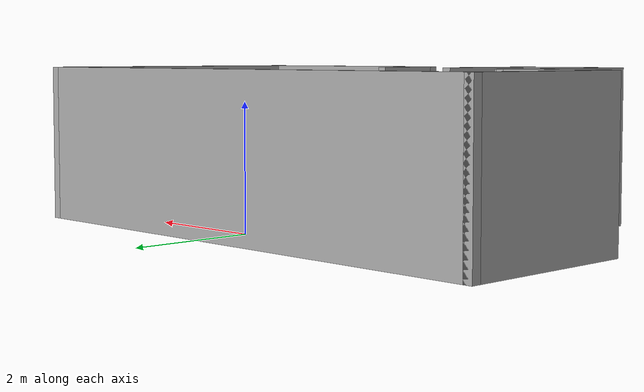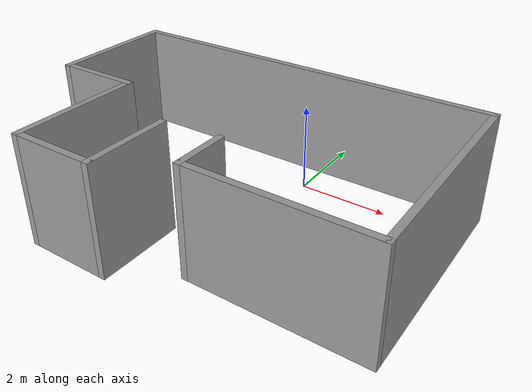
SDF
<?xml version='1.0'?>
<sdf version='1.6'>
  <model name='La_maisonette'>
    <pose frame=''>-0.705 -1.99 0 0 -0 0</pose>
    <link name='Wall_11'>
      <collision name='Wall_11_Collision'>
        <geometry>
          <box>
            <size>9 0.15 2.5</size>
          </box>
        </geometry>
        <pose frame=''>0 0 1.25 0 -0 0</pose>
      </collision>
      <visual name='Wall_11_Visual'>
        <pose frame=''>0 0 1.25 0 -0 0</pose>
        <geometry>
          <box>
            <size>9 0.15 2.5</size>
          </box>
        </geometry>
        <material>
          <script>
            <uri>file://media/materials/scripts/gazebo.material</uri>
            <name>Gazebo/Grey</name>
          </script>
          <ambient>1 1 1 1</ambient>
        </material>
        <meta>
          <layer>0</layer>
        </meta>
      </visual>
      <pose frame=''>0 2.85 0 0 -0 0</pose>
    </link>
    <link name='Wall_12'>
      <collision name='Wall_12_Collision'>
        <geometry>
          <box>
            <size>5 0.15 2.5</size>
          </box>
        </geometry>
        <pose frame=''>0 0 1.25 0 -0 0</pose>
      </collision>
      <visual name='Wall_12_Visual'>
        <pose frame=''>0 0 1.25 0 -0 0</pose>
        <geometry>
          <box>
            <size>5 0.15 2.5</size>
          </box>
        </geometry>
        <material>
          <script>
            <uri>file://media/materials/scripts/gazebo.material</uri>
            <name>Gazebo/Grey</name>
          </script>
          <ambient>1 1 1 1</ambient>
        </material>
        <meta>
          <layer>0</layer>
        </meta>
      </visual>
      <pose frame=''>4.425 0.425 0 0 -0 -1.5708</pose>
    </link>
    <link name='Wall_13'>
      <collision name='Wall_13_Collision'>
        <geometry>
          <box>
            <size>4 0.15 2.5</size>
          </box>
        </geometry>
        <pose frame=''>0 0 1.25 0 -0 0</pose>
      </collision>
      <visual name='Wall_13_Visual'>
        <pose frame=''>0 0 1.25 0 -0 0</pose>
        <geometry>
          <box>
            <size>4 0.15 2.5</size>
          </box>
        </geometry>
        <material>
          <script>
            <uri>file://media/materials/scripts/gazebo.material</uri>
            <name>Gazebo/Grey</name>
          </script>
          <ambient>1 1 1 1</ambient>
        </material>
        <meta>
          <layer>0</layer>
        </meta>
      </visual>
      <pose frame=''>2.5 -2 0 0 -0 3.14159</pose>
    </link>
    <link name='Wall_15'>
      <collision name='Wall_15_Collision'>
        <geometry>
          <box>
            <size>3 0.15 2.5</size>
          </box>
        </geometry>
        <pose frame=''>0 0 1.25 0 -0 0</pose>
      </collision>
      <visual name='Wall_15_Visual'>
        <pose frame=''>0 0 1.25 0 -0 0</pose>
        <geometry>
          <box>
            <size>3 0.15 2.5</size>
          </box>
        </geometry>
        <material>
          <script>
            <uri>file://media/materials/scripts/gazebo.material</uri>
            <name>Gazebo/Grey</name>
          </script>
          <ambient>1 1 1 1</ambient>
        </material>
        <meta>
          <layer>0</layer>
        </meta>
      </visual>
      <pose frame=''>-4.425 1.425 0 0 -0 -1.5708</pose>
    </link>
    <link name='Wall_16'>
      <collision name='Wall_16_Collision'>
        <geometry>
          <box>
            <size>2 0.15 2.5</size>
          </box>
        </geometry>
        <pose frame=''>0 0 1.25 0 -0 0</pose>
      </collision>
      <visual name='Wall_16_Visual'>
        <pose frame=''>0 0 1.25 0 -0 0</pose>
        <geometry>
          <box>
            <size>2 0.15 2.5</size>
          </box>
        </geometry>
        <material>
          <script>
            <uri>file://media/materials/scripts/gazebo.material</uri>
            <name>Gazebo/Grey</name>
          </script>
          <ambient>1 1 1 1</ambient>
        </material>
        <meta>
          <layer>0</layer>
        </meta>
      </visual>
      <pose frame=''>-3.5 -0 0 0 -0 0</pose>
    </link>
    <link name='Wall_17'>
      <collision name='Wall_17_Collision'>
        <geometry>
          <box>
            <size>3 0.15 2.5</size>
          </box>
        </geometry>
        <pose frame=''>0 0 1.25 0 -0 0</pose>
      </collision>
      <visual name='Wall_17_Visual'>
        <pose frame=''>0 0 1.25 0 -0 0</pose>
        <geometry>
          <box>
            <size>3 0.15 2.5</size>
          </box>
        </geometry>
        <material>
          <script>
            <uri>file://media/materials/scripts/gazebo.material</uri>
            <name>Gazebo/Grey</name>
          </script>
          <ambient>1 1 1 1</ambient>
        </material>
        <meta>
          <layer>0</layer>
        </meta>
      </visual>
      <pose frame=''>-2.575 -1.425 0 0 -0 -1.5708</pose>
    </link>
    <link name='Wall_18'>
      <collision name='Wall_18_Collision'>
        <geometry>
          <box>
            <size>2 0.15 2.5</size>
          </box>
        </geometry>
        <pose frame=''>0 0 1.25 0 -0 0</pose>
      </collision>
      <visual name='Wall_18_Visual'>
        <pose frame=''>0 0 1.25 0 -0 0</pose>
        <geometry>
          <box>
            <size>2 0.15 2.5</size>
          </box>
        </geometry>
        <material>
          <script>
            <uri>file://media/materials/scripts/gazebo.material</uri>
            <name>Gazebo/Grey</name>
          </script>
          <ambient>1 1 1 1</ambient>
        </material>
        <meta>
          <layer>0</layer>
        </meta>
      </visual>
      <pose frame=''>-1.65 -2.85 0 0 -0 0</pose>
    </link>
    <link name='Wall_19'>
      <collision name='Wall_19_Collision'>
        <geometry>
          <box>
            <size>2 0.15 2.5</size>
          </box>
        </geometry>
        <pose frame=''>0 0 1.25 0 -0 0</pose>
      </collision>
      <visual name='Wall_19_Visual'>
        <pose frame=''>0 0 1.25 0 -0 0</pose>
        <geometry>
          <box>
            <size>2 0.15 2.5</size>
          </box>
        </geometry>
        <material>
          <script>
            <uri>file://media/materials/scripts/gazebo.material</uri>
            <name>Gazebo/Grey</name>
          </script>
          <ambient>1 1 1 1</ambient>
        </material>
        <meta>
          <layer>0</layer>
        </meta>
      </visual>
      <pose frame=''>-0.725 -1.925 0 0 -0 1.5708</pose>
    </link>
    <link name='Wall_21'>
      <collision name='Wall_21_Collision'>
        <geometry>
          <box>
            <size>1.25 0.15 2.5</size>
          </box>
        </geometry>
        <pose frame=''>0 0 1.25 0 -0 0</pose>
      </collision>
      <visual name='Wall_21_Visual'>
        <pose frame=''>0 0 1.25 0 -0 0</pose>
        <geometry>
          <box>
            <size>1.25 0.15 2.5</size>
          </box>
        </geometry>
        <material>
          <script>
            <uri>file://media/materials/scripts/gazebo.material</uri>
            <name>Gazebo/Grey</name>
          </script>
          <ambient>1 1 1 1</ambient>
        </material>
        <meta>
          <layer>0</layer>
        </meta>
      </visual>
      <pose frame=''>0.575 -1.45 0 0 -0 1.5708</pose>
    </link>
    <static>1</static>
  </model>
</sdf>
